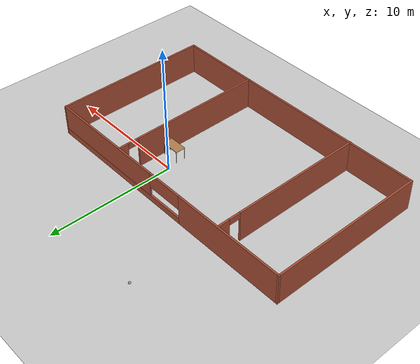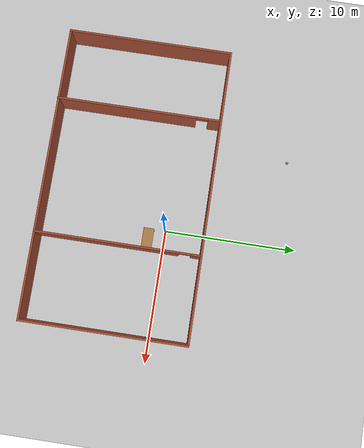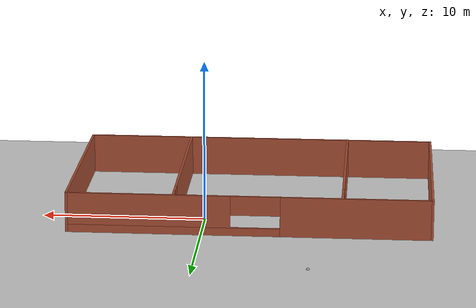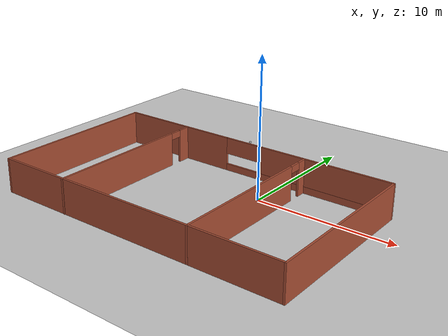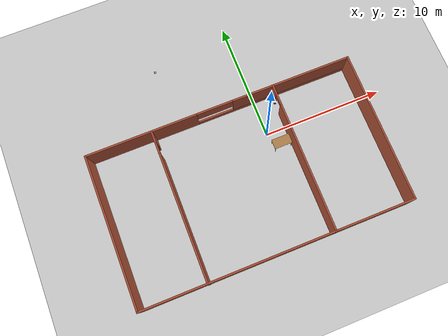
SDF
<sdf version="1.7">
 <world name="default">
  <plugin name="hello" filename="libhello.so"/>
  <light name="sun" type="directional">
   <pose>0 0 10 0 -0 0</pose>
   <diffuse>0.8 0.8 0.8 1</diffuse>
   <specular>0.2 0.2 0.2 1</specular>
   <attenuation>
    <range>1000</range>
    <constant>0.9</constant>
    <linear>0.01</linear>
    <quadratic>0.001</quadratic>
   </attenuation>
   <direction>-0.5 0.1 -0.9</direction>
   <spot><inner_angle>0</inner_angle><outer_angle>0</outer_angle><falloff>0</falloff></spot>
  </light>
  <model name="ground_plane">
   <static>1</static>
   <link name="link">
    <collision name="collision">
     <geometry><plane><normal>0 0 1</normal><size>100 100</size></plane></geometry>
     <surface>
      <contact><collide_bitmask>65535</collide_bitmask></contact>
      <friction><ode><mu>100</mu><mu2>50</mu2></ode></friction>
     </surface>
    </collision>
    <visual name="visual">
     <cast_shadows>0</cast_shadows>
     <geometry><plane><normal>0 0 1</normal><size>100 100</size></plane></geometry>
     <material>
      <script><uri>file://media/materials/scripts/gazebo.material</uri><name>Gazebo/Grey</name></script>
     </material>
    </visual>
   </link>
  </model>
  <gravity>0 0 -9.8</gravity>
  <magnetic_field>6e-06 2.3e-05 -4.2e-05</magnetic_field>
  <atmosphere type="adiabatic"/>
  <physics type="ode">
   <max_step_size>0.001</max_step_size>
   <real_time_factor>1</real_time_factor>
   <real_time_update_rate>1000</real_time_update_rate>
  </physics>
  <scene><ambient>0.4 0.4 0.4 1</ambient><background>0.7 0.7 0.7 1</background><shadows>1</shadows></scene>
  <spherical_coordinates>
   <surface_model>EARTH_WGS84</surface_model>
   <latitude_deg>0</latitude_deg>
   <longitude_deg>0</longitude_deg>
   <elevation>0</elevation>
   <heading_deg>0</heading_deg>
  </spherical_coordinates>
  <model name="mybuilding">
   <pose>-2.89227 -3.24183 0 0 -0 0</pose>
   <link name="Wall_0">
    <pose>0 6.19029 0 0 -0 0</pose>
    <visual name="Wall_0_Visual_0">
     <pose>-6.51554 0 1.25 0 -0 0</pose>
     <geometry><box><size>9.21892 0.15 2.5</size></box></geometry>
     <material>
      <script><uri>file://media/materials/scripts/gazebo.material</uri><name>Gazebo/Bricks</name></script>
      <ambient>1 1 1 1</ambient>
     </material>
     <meta><layer>0</layer></meta>
    </visual>
    <collision name="Wall_0_Collision_0">
     <geometry><box><size>9.21892 0.15 2.5</size></box></geometry>
     <pose>-6.51554 0 1.25 0 -0 0</pose>
    </collision>
    <visual name="Wall_0_Visual_1">
     <pose>4.60946 0 0.25 0 -0 0</pose>
     <geometry><box><size>13.0311 0.15 0.5</size></box></geometry>
     <material>
      <script><uri>file://media/materials/scripts/gazebo.material</uri><name>Gazebo/Bricks</name></script>
      <ambient>1 1 1 1</ambient>
     </material>
     <meta><layer>0</layer></meta>
    </visual>
    <collision name="Wall_0_Collision_1">
     <geometry><box><size>13.0311 0.15 0.5</size></box></geometry>
     <pose>4.60946 0 0.25 0 -0 0</pose>
    </collision>
    <visual name="Wall_0_Visual_2">
     <pose>6.10946 0 1.5 0 -0 0</pose>
     <geometry><box><size>10.0311 0.15 2</size></box></geometry>
     <material>
      <script><uri>file://media/materials/scripts/gazebo.material</uri><name>Gazebo/Bricks</name></script>
      <ambient>1 1 1 1</ambient>
     </material>
     <meta><layer>0</layer></meta>
    </visual>
    <collision name="Wall_0_Collision_2">
     <geometry><box><size>10.0311 0.15 2</size></box></geometry>
     <pose>6.10946 0 1.5 0 -0 0</pose>
    </collision>
    <visual name="Wall_0_Visual_3">
     <pose>-0.406084 0 1.9 0 -0 0</pose>
     <geometry><box><size>3 0.15 1.2</size></box></geometry>
     <material>
      <script><uri>file://media/materials/scripts/gazebo.material</uri><name>Gazebo/Bricks</name></script>
      <ambient>1 1 1 1</ambient>
     </material>
     <meta><layer>0</layer></meta>
    </visual>
    <collision name="Wall_0_Collision_3">
     <geometry><box><size>3 0.15 1.2</size></box></geometry>
     <pose>-0.406084 0 1.9 0 -0 0</pose>
    </collision>
   </link>
   <link name="Wall_3">
    <collision name="Wall_3_Collision">
     <geometry><box><size>12.5 0.15 2.5</size></box></geometry>
     <pose>0 0 1.25 0 -0 0</pose>
    </collision>
    <visual name="Wall_3_Visual">
     <pose>0 0 1.25 0 -0 0</pose>
     <geometry><box><size>12.5 0.15 2.5</size></box></geometry>
     <material>
      <script><uri>file://media/materials/scripts/gazebo.material</uri><name>Gazebo/Bricks</name></script>
      <ambient>1 1 1 1</ambient>
     </material>
     <meta><layer>0</layer></meta>
    </visual>
    <pose>-11.05 0.015295 0 0 -0 -1.5708</pose>
   </link>
   <link name="Wall_4">
    <collision name="Wall_4_Collision">
     <geometry><box><size>22.25 0.15 2.5</size></box></geometry>
     <pose>0 0 1.25 0 -0 0</pose>
    </collision>
    <visual name="Wall_4_Visual">
     <pose>0 0 1.25 0 -0 0</pose>
     <geometry><box><size>22.25 0.15 2.5</size></box></geometry>
     <material>
      <script><uri>file://media/materials/scripts/gazebo.material</uri><name>Gazebo/Bricks</name></script>
      <ambient>1 1 1 1</ambient>
     </material>
     <meta><layer>0</layer></meta>
    </visual>
    <pose>0 -6.1597 0 0 -0 0</pose>
   </link>
   <link name="Wall_5">
    <collision name="Wall_5_Collision">
     <geometry><box><size>12.5 0.15 2.5</size></box></geometry>
     <pose>0 0 1.25 0 -0 0</pose>
    </collision>
    <visual name="Wall_5_Visual">
     <pose>0 0 1.25 0 -0 0</pose>
     <geometry><box><size>12.5 0.15 2.5</size></box></geometry>
     <material>
      <script><uri>file://media/materials/scripts/gazebo.material</uri><name>Gazebo/Bricks</name></script>
      <ambient>1 1 1 1</ambient>
     </material>
     <meta><layer>0</layer></meta>
    </visual>
    <pose>11.05 0.015295 0 0 -0 1.5708</pose>
   </link>
   <link name="Wall_7">
    <pose>-5.66612 -0.015295 0 0 -0 -1.5708</pose>
    <visual name="Wall_7_Visual_0">
     <pose>-5.74 0 1.25 0 -0 0</pose>
     <geometry><box><size>1.02001 0.15 2.5</size></box></geometry>
     <material>
      <script><uri>file://media/materials/scripts/gazebo.material</uri><name>Gazebo/Bricks</name></script>
      <ambient>1 1 1 1</ambient>
     </material>
     <meta><layer>0</layer></meta>
    </visual>
    <collision name="Wall_7_Collision_0">
     <geometry><box><size>1.02001 0.15 2.5</size></box></geometry>
     <pose>-5.74 0 1.25 0 -0 0</pose>
    </collision>
    <visual name="Wall_7_Visual_1">
     <pose>0.960005 0 1.25 0 -0 0</pose>
     <geometry><box><size>10.58 0.15 2.5</size></box></geometry>
     <material>
      <script><uri>file://media/materials/scripts/gazebo.material</uri><name>Gazebo/Bricks</name></script>
      <ambient>1 1 1 1</ambient>
     </material>
     <meta><layer>0</layer></meta>
    </visual>
    <collision name="Wall_7_Collision_1">
     <geometry><box><size>10.58 0.15 2.5</size></box></geometry>
     <pose>0.960005 0 1.25 0 -0 0</pose>
    </collision>
    <visual name="Wall_7_Visual_2">
     <pose>-4.77999 0 2.25 0 -0 0</pose>
     <geometry><box><size>0.9 0.15 0.5</size></box></geometry>
     <material>
      <script><uri>file://media/materials/scripts/gazebo.material</uri><name>Gazebo/Bricks</name></script>
      <ambient>1 1 1 1</ambient>
     </material>
     <meta><layer>0</layer></meta>
    </visual>
    <collision name="Wall_7_Collision_2">
     <geometry><box><size>0.9 0.15 0.5</size></box></geometry>
     <pose>-4.77999 0 2.25 0 -0 0</pose>
    </collision>
   </link>
   <link name="Wall_9">
    <pose>4.55126 0.014829 0 0 -0 -1.5708</pose>
    <visual name="Wall_9_Visual_0">
     <pose>-5.82987 0 1.25 0 -0 0</pose>
     <geometry><box><size>0.840253 0.15 2.5</size></box></geometry>
     <material>
      <script><uri>file://media/materials/scripts/gazebo.material</uri><name>Gazebo/Bricks</name></script>
      <ambient>1 1 1 1</ambient>
     </material>
     <meta><layer>0</layer></meta>
    </visual>
    <collision name="Wall_9_Collision_0">
     <geometry><box><size>0.840253 0.15 2.5</size></box></geometry>
     <pose>-5.82987 0 1.25 0 -0 0</pose>
    </collision>
    <visual name="Wall_9_Visual_1">
     <pose>0.870127 0 1.25 0 -0 0</pose>
     <geometry><box><size>10.7597 0.15 2.5</size></box></geometry>
     <material>
      <script><uri>file://media/materials/scripts/gazebo.material</uri><name>Gazebo/Bricks</name></script>
      <ambient>1 1 1 1</ambient>
     </material>
     <meta><layer>0</layer></meta>
    </visual>
    <collision name="Wall_9_Collision_1">
     <geometry><box><size>10.7597 0.15 2.5</size></box></geometry>
     <pose>0.870127 0 1.25 0 -0 0</pose>
    </collision>
    <visual name="Wall_9_Visual_2">
     <pose>-4.95975 0 2.25 0 -0 0</pose>
     <geometry><box><size>0.9 0.15 0.5</size></box></geometry>
     <material>
      <script><uri>file://media/materials/scripts/gazebo.material</uri><name>Gazebo/Bricks</name></script>
      <ambient>1 1 1 1</ambient>
     </material>
     <meta><layer>0</layer></meta>
    </visual>
    <collision name="Wall_9_Collision_2">
     <geometry><box><size>0.9 0.15 0.5</size></box></geometry>
     <pose>-4.95975 0 2.25 0 -0 0</pose>
    </collision>
   </link>
   <static>1</static>
  </model>
  <model name="table">
   <static>1</static>
   <link name="link">
    <collision name="surface">
     <pose>0 0 1 0 -0 0</pose>
     <geometry><box><size>1.5 0.8 0.03</size></box></geometry>
     <surface><friction><ode><mu>0.6</mu><mu2>0.6</mu2></ode></friction></surface>
    </collision>
    <visual name="visual1">
     <pose>0 0 1 0 -0 0</pose>
     <geometry><box><size>1.5 0.8 0.03</size></box></geometry>
     <material>
      <script><uri>file://media/materials/scripts/gazebo.material</uri><name>Gazebo/Wood</name></script>
     </material>
    </visual>
    <collision name="front_left_leg">
     <pose>0.68 0.38 0.5 0 -0 0</pose>
     <geometry><cylinder><radius>0.02</radius><length>1</length></cylinder></geometry>
    </collision>
    <visual name="front_left_leg">
     <pose>0.68 0.38 0.5 0 -0 0</pose>
     <geometry><cylinder><radius>0.02</radius><length>1</length></cylinder></geometry>
     <material>
      <script><uri>file://media/materials/scripts/gazebo.material</uri><name>Gazebo/Grey</name></script>
     </material>
    </visual>
    <collision name="front_right_leg">
     <pose>0.68 -0.38 0.5 0 -0 0</pose>
     <geometry><cylinder><radius>0.02</radius><length>1</length></cylinder></geometry>
    </collision>
    <visual name="front_right_leg">
     <pose>0.68 -0.38 0.5 0 -0 0</pose>
     <geometry><cylinder><radius>0.02</radius><length>1</length></cylinder></geometry>
     <material>
      <script><uri>file://media/materials/scripts/gazebo.material</uri><name>Gazebo/Grey</name></script>
     </material>
    </visual>
    <collision name="back_right_leg">
     <pose>-0.68 -0.38 0.5 0 -0 0</pose>
     <geometry><cylinder><radius>0.02</radius><length>1</length></cylinder></geometry>
    </collision>
    <visual name="back_right_leg">
     <pose>-0.68 -0.38 0.5 0 -0 0</pose>
     <geometry><cylinder><radius>0.02</radius><length>1</length></cylinder></geometry>
     <material>
      <script><uri>file://media/materials/scripts/gazebo.material</uri><name>Gazebo/Grey</name></script>
     </material>
    </visual>
    <collision name="back_left_leg">
     <pose>-0.68 0.38 0.5 0 -0 0</pose>
     <geometry><cylinder><radius>0.02</radius><length>1</length></cylinder></geometry>
    </collision>
    <visual name="back_left_leg">
     <pose>-0.68 0.38 0.5 0 -0 0</pose>
     <geometry><cylinder><radius>0.02</radius><length>1</length></cylinder></geometry>
     <material>
      <script><uri>file://media/materials/scripts/gazebo.material</uri><name>Gazebo/Grey</name></script>
     </material>
    </visual>
   </link>
   <pose>0.790391 -1.20774 0 0 -0 0</pose>
  </model>
  <model name="my_ball">
   <link name="link_0">
    <inertial>
     <mass>1</mass>
     <inertia><ixx>0.1</ixx><ixy>0</ixy><ixz>0</ixz><iyy>0.1</iyy><iyz>0</iyz><izz>0.1</izz></inertia>
    </inertial>
    <visual name="visual">
     <geometry><sphere><radius>0.1</radius></sphere></geometry>
     <material>
      <lighting>1</lighting>
      <script><uri>file://media/materials/scripts/gazebo.material</uri><name>Gazebo/Grey</name></script>
      <shader type="pixel"><normal_map>__default__</normal_map></shader>
      <ambient>1 1 1 1</ambient>
      <diffuse>1 1 1 1</diffuse>
      <specular>1 1 1 1</specular>
      <emissive>1 1 1 1</emissive>
     </material>
    </visual>
    <collision name="collision">
     <geometry><sphere><radius>0.1</radius></sphere></geometry>
     <surface>
      <friction>
       <ode><mu>1</mu><mu2>1</mu2><fdir1>0 0 0</fdir1><slip1>0</slip1><slip2>0</slip2></ode>
       <torsional>
        <coefficient>1</coefficient>
        <patch_radius>0</patch_radius>
        <surface_radius>0</surface_radius>
        <use_patch_radius>1</use_patch_radius>
        <ode><slip>0</slip></ode>
       </torsional>
      </friction>
      <bounce><restitution_coefficient>0</restitution_coefficient><threshold>1e+06</threshold></bounce>
      <contact>
       <collide_without_contact>0</collide_without_contact>
       <collide_without_contact_bitmask>1</collide_without_contact_bitmask>
       <collide_bitmask>1</collide_bitmask>
       <ode>
        <soft_cfm>0</soft_cfm>
        <soft_erp>0.2</soft_erp>
        <kp>1e+13</kp>
        <kd>1</kd>
        <max_vel>0.01</max_vel>
        <min_depth>0</min_depth>
       </ode>
       <bullet>
        <split_impulse>1</split_impulse>
        <split_impulse_penetration_threshold>-0.01</split_impulse_penetration_threshold>
        <soft_cfm>0</soft_cfm>
        <soft_erp>0.2</soft_erp>
        <kp>1e+13</kp>
        <kd>1</kd>
       </bullet>
      </contact>
     </surface>
    </collision>
   </link>
   <static>0</static>
   <pose>-6.71025 8.57921 0 0 -0 0</pose>
  </model>
 </world>
</sdf>
